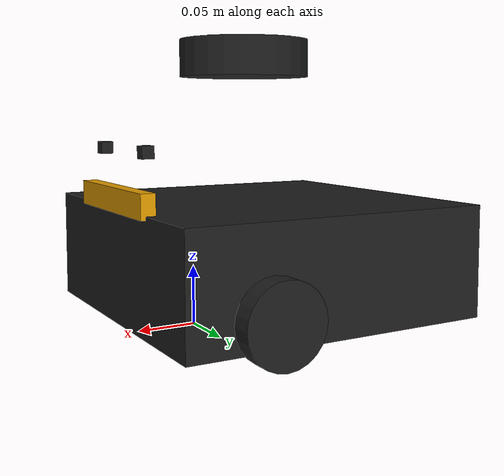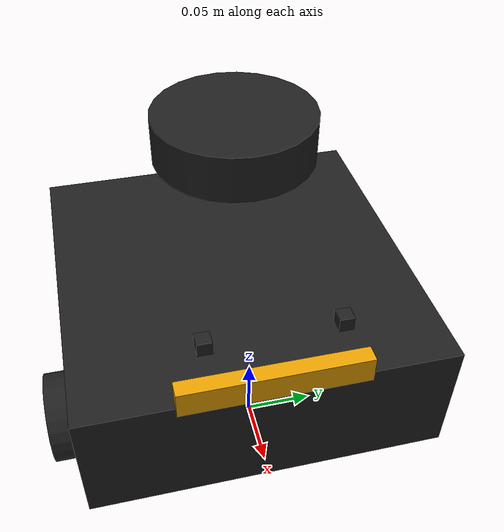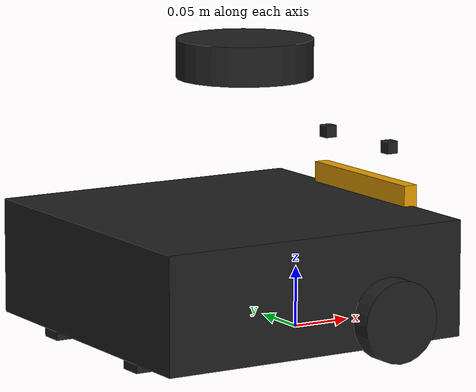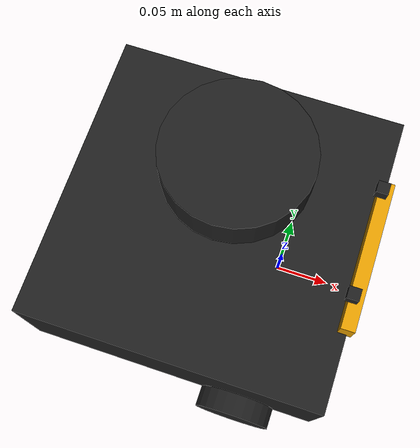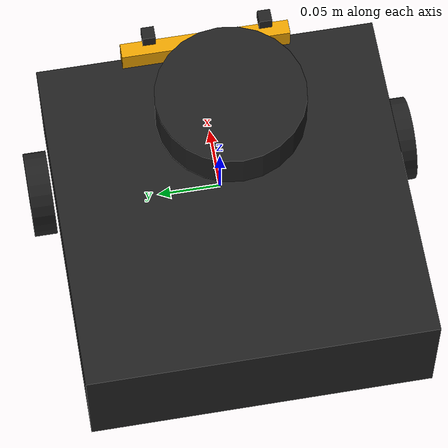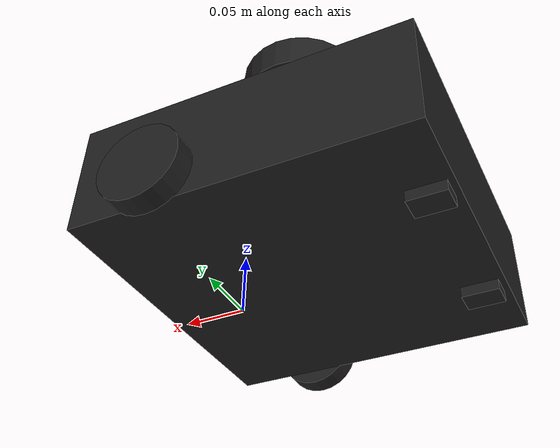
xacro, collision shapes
<?xml version="1.0" ?>
<robot name="turtlebot3_waffle" xmlns:xacro="http://ros.org/wiki/xacro">
  <xacro:include filename="$(find turtlebot3_description)/urdf/common_properties.xacro"/>
  <xacro:include filename="$(find building_map)/urdf/turtlebot3_waffle.gazebo.xacro"/>
  <xacro:include filename="$(find building_map)/urdf/sensors/stereo_camera.urdf.xacro"/>

  <xacro:property name="r200_cam_rgb_px" value="0.005"/>
  <xacro:property name="r200_cam_rgb_py" value="0.018"/>
  <xacro:property name="r200_cam_rgb_pz" value="0.013"/>
  <xacro:property name="r200_cam_depth_offset" value="0.01"/>
  <xacro:property name="M_PI" value="3.1415926535897931"/>

  <link name="base_footprint"/>

  <joint name="base_joint" type="fixed">
    <parent link="base_footprint"/>
    <child link="base_link" />
    <origin xyz="0 0 0.010" rpy="0 0 0"/>
  </joint>

  <link name="base_link">
    <visual>
      <origin xyz="-0.064 0 0.0" rpy="0 0 0"/>
      <geometry>
        <mesh filename="package://turtlebot3_description/meshes/bases/waffle_base.stl" scale="0.001 0.001 0.001"/>
      </geometry>
      <material name="light_black"/>
    </visual>

    <collision>
      <origin xyz="-0.064 0 0.047" rpy="0 0 0"/>
      <geometry>
        <box size="0.266 0.266 0.094"/>
      </geometry>
    </collision>

    <inertial>
      <origin xyz="0 0 0" rpy="0 0 0"/>
      <mass value="1.3729096e+00"/>
      <inertia ixx="8.7002718e-03" ixy="-4.7576583e-05" ixz="1.1160499e-04"
               iyy="8.6195418e-03" iyz="-3.5422299e-06"
               izz="1.4612727e-02" />
    </inertial>
  </link>

  <joint name="wheel_left_joint" type="continuous">
    <parent link="base_link"/>
    <child link="wheel_left_link"/>
    <origin xyz="0.0 0.144 0.023" rpy="-1.57 0 0"/>
    <axis xyz="0 0 1"/>
  </joint>

  <link name="wheel_left_link">
    <visual>
      <origin xyz="0 0 0" rpy="1.57 0 0"/>
      <geometry>
        <mesh filename="package://turtlebot3_description/meshes/wheels/left_tire.stl" scale="0.001 0.001 0.001"/>
      </geometry>
      <material name="dark"/>
    </visual>

    <collision>
      <origin xyz="0 0 0" rpy="0 0 0"/>
      <geometry>
        <cylinder length="0.018" radius="0.033"/>
      </geometry>
    </collision>

    <inertial>
      <origin xyz="0 0 0" />
      <mass value="2.8498940e-02" />
      <inertia ixx="1.1175580e-05" ixy="-4.2369783e-11" ixz="-5.9381719e-09"
               iyy="1.1192413e-05" iyz="-1.4400107e-11"
               izz="2.0712558e-05" />
      </inertial>
  </link>

  <joint name="wheel_right_joint" type="continuous">
    <parent link="base_link"/>
    <child link="wheel_right_link"/>
    <origin xyz="0.0 -0.144 0.023" rpy="-1.57 0 0"/>
    <axis xyz="0 0 1"/>
  </joint>

  <link name="wheel_right_link">
    <visual>
      <origin xyz="0 0 0" rpy="1.57 0 0"/>
      <geometry>
        <mesh filename="package://turtlebot3_description/meshes/wheels/right_tire.stl" scale="0.001 0.001 0.001"/>
      </geometry>
      <material name="dark"/>
    </visual>

    <collision>
      <origin xyz="0 0 0" rpy="0 0 0"/>
      <geometry>
        <cylinder length="0.018" radius="0.033"/>
      </geometry>
    </collision>

    <inertial>
      <origin xyz="0 0 0" />
      <mass value="2.8498940e-02" />
      <inertia ixx="1.1175580e-05" ixy="-4.2369783e-11" ixz="-5.9381719e-09"
               iyy="1.1192413e-05" iyz="-1.4400107e-11"
               izz="2.0712558e-05" />
      </inertial>
  </link>

  <joint name="caster_back_right_joint" type="fixed">
    <parent link="base_link"/>
    <child link="caster_back_right_link"/>
    <origin xyz="-0.177 -0.064 -0.004" rpy="-1.57 0 0"/>
  </joint>

  <link name="caster_back_right_link">
    <collision>
      <origin xyz="0 0.001 0" rpy="0 0 0"/>
      <geometry>
        <box size="0.030 0.009 0.020"/>
      </geometry>
    </collision>

    <inertial>
      <origin xyz="0 0 0" />
      <mass value="0.005" />
      <inertia ixx="0.001" ixy="0.0" ixz="0.0"
               iyy="0.001" iyz="0.0"
               izz="0.001" />
    </inertial>
  </link>

  <joint name="caster_back_left_joint" type="fixed">
    <parent link="base_link"/>
    <child link="caster_back_left_link"/>
    <origin xyz="-0.177 0.064 -0.004" rpy="-1.57 0 0"/>
  </joint>

  <link name="caster_back_left_link">
    <collision>
      <origin xyz="0 0.001 0" rpy="0 0 0"/>
      <geometry>
        <box size="0.030 0.009 0.020"/>
      </geometry>
    </collision>

    <inertial>
      <origin xyz="0 0 0" />
      <mass value="0.005" />
      <inertia ixx="0.001" ixy="0.0" ixz="0.0"
               iyy="0.001" iyz="0.0"
               izz="0.001" />
    </inertial>
  </link>

  <joint name="imu_joint" type="fixed">
    <parent link="base_link"/>
    <child link="imu_link"/>
    <origin xyz="0.0 0 0.068" rpy="0 0 0"/>
  </joint>

  <link name="imu_link"/>

  <joint name="scan_joint" type="fixed">
    <parent link="base_link"/>
    <child link="base_scan"/>
    <origin xyz="-0.064 0 0.222" rpy="0 0 0"/>
  </joint>

  <link name="base_scan">
    <visual>
      <origin xyz="0 0 0" rpy="0 0 0"/>
      <geometry>
        <mesh filename="package://turtlebot3_description/meshes/sensors/lds.stl" scale="0.001 0.001 0.001"/>
      </geometry>
      <material name="dark"/>
    </visual>

    <collision>
      <origin xyz="0.015 0 -0.0065" rpy="0 0 0"/>
      <geometry>
        <cylinder length="0.0315" radius="0.055"/>
      </geometry>
    </collision>

    <inertial>
      <mass value="0.114" />
      <origin xyz="0 0 0" />
      <inertia ixx="0.001" ixy="0.0" ixz="0.0"
               iyy="0.001" iyz="0.0"
               izz="0.001" />
    </inertial>
  </link>

  <joint name="camera_joint" type="fixed">
    <origin xyz="0.064 -0.065 0.094" rpy="0 0 0"/>
    <parent link="base_link"/>
    <child link="camera_link"/>
  </joint>

  <link name="camera_link">
    <visual>
     <origin xyz="0 0 0" rpy="1.57 0 1.57"/>
      <geometry>
       <mesh filename="package://turtlebot3_description/meshes/sensors/r200.dae" />
      </geometry>
    </visual>
    <collision>
      <origin xyz="0.003 0.065 0.007" rpy="0 0 0"/>
      <geometry>
        <box size="0.012 0.132 0.020"/>
      </geometry>
    </collision>

    <!-- This inertial field needs doesn't contain reliable data!! -->
  </link>

  <joint name="camera_rgb_joint" type="fixed">
    <origin xyz="${r200_cam_rgb_px} ${r200_cam_rgb_py} ${r200_cam_rgb_pz}" rpy="0 0 0"/>
    <parent link="camera_link"/>
    <child link="camera_rgb_frame"/>
  </joint>
  <link name="camera_rgb_frame"/>

  <joint name="camera_rgb_optical_joint" type="fixed">
    <origin xyz="0 0 0" rpy="-1.57 0 -1.57"/>
    <parent link="camera_rgb_frame"/>
    <child link="camera_rgb_optical_frame"/>
  </joint>
  <link name="camera_rgb_optical_frame"/>

  <joint name="camera_depth_joint" type="fixed">
    <origin xyz="${r200_cam_rgb_px} ${r200_cam_rgb_py + r200_cam_depth_offset} ${r200_cam_rgb_pz}" rpy="0 0 0"/>
    <parent link="camera_link"/>
    <child link="camera_depth_frame"/>
  </joint>
  <link name="camera_depth_frame"/>

  <joint name="camera_depth_optical_joint" type="fixed">
    <origin xyz="0 0 0" rpy="-1.57 0 -1.57"/>
    <parent link="camera_depth_frame"/>
    <child link="camera_depth_optical_frame"/>
  </joint>
  <link name="camera_depth_optical_frame"/>

  <xacro:stereo_camera_v0 name="wide_stereo" parent="base_link" focal_length="319.998825" hfov="90" image_format="BAYER_BGGR8" image_width="640" image_height="480">
    <origin xyz="0.06 0.045 0.14" rpy="0 0 0"/>
  </xacro:stereo_camera_v0>

</robot>

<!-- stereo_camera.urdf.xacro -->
<robot xmlns:xacro="http://www.ros.org/wiki/xacro">

  <!-- stereo camera macro uses wge100_camera macros -->
  <xacro:include filename="$(find building_map)/urdf/sensors/wge100_camera.urdf.xacro" />

  <xacro:include filename="$(find building_map)/urdf/sensors/stereo_camera.gazebo.xacro" />

  <xacro:property name="stereo_dx" value="0.00" />
  <xacro:property name="stereo_dy" value="-0.09" /> <!-- +y to the left -->
  <xacro:property name="stereo_dz" value="0.00" />
  <xacro:property name="stereo_rx" value="0.00" />
  <xacro:property name="stereo_ry" value="0.00" />
  <xacro:property name="stereo_rz" value="0.00" />

  <!-- this macro is used for creating wide and narrow double stereo camera links -->
  <xacro:macro name="stereo_camera_v0" params="name parent focal_length hfov image_format image_width image_height *origin">

    <joint name="${name}_frame_joint" type="fixed">
      <xacro:insert_block name="origin" />
      <parent link="${parent}"/>
      <child link="${name}_link"/>
    </joint>

    <!-- camera link is at center of the optical frame, but in x-forward notation -->
    <link name="${name}_link">
    </link>

    <!-- attach optical frame to the camera link -->
    <joint name="${name}_optical_frame_joint" type="fixed">
      <origin xyz="0 0 0" rpy="${-M_PI/2} 0.0 ${-M_PI/2}" /> <!-- rotate frame from x-forward to z-forward camera coords -->
      <parent link="${name}_link"/>
      <child link="${name}_optical_frame"/>
    </joint>

    <!-- optical frame for the stereo camera, with z-forward notation, this is the frame stereo camera images users should refer to -->
    <link name="${name}_optical_frame" type="camera"/>

    <!-- stereo left camera -->
    <xacro:wge100_camera_v0 name="${name}_l_stereo_camera" camera_name="${name}/left" image_format="${image_format}" image_topic_name="image_raw"
                            camera_info_topic_name="camera_info" parent="${name}_link"
                            hfov="${hfov}" focal_length="${focal_length}"
                            frame_id="${name}_optical_frame" hack_baseline="0"
                            image_width="${image_width}" image_height="${image_height}">
      <origin xyz="0 0 0" rpy="0 0 0" />
    </xacro:wge100_camera_v0>

    <!-- stereo right camera -->
    <xacro:wge100_camera_v0 name="${name}_r_stereo_camera" camera_name="${name}/right" image_format="${image_format}" image_topic_name="image_raw"
                            camera_info_topic_name="camera_info" parent="${name}_l_stereo_camera_frame"
                            hfov="${hfov}" focal_length="${focal_length}"
                            frame_id="${name}_optical_frame" hack_baseline="${-stereo_dy}"
                            image_width="${image_width}" image_height="${image_height}">
      <origin xyz="${stereo_dx} ${stereo_dy} ${stereo_dz}" rpy="${stereo_rx} ${stereo_ry} ${stereo_rz}" />
    </xacro:wge100_camera_v0>

    <!-- extensions -->
    <xacro:stereo_camera_gazebo_v0 name="${name}" focal_length="${focal_length}" hfov="${hfov}"
                                   image_width="${image_width}" image_height="${image_height}"/>

  </xacro:macro>
</robot>

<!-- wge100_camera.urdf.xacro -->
<!-- XML namespaces -->
<robot xmlns:xacro="http://www.ros.org/wiki/xacro">

  <xacro:include filename="$(find building_map)/urdf/sensors/wge100_camera.gazebo.xacro" />

  <xacro:macro name="wge100_camera_v0" params="name camera_name image_format image_topic_name camera_info_topic_name parent hfov focal_length frame_id hack_baseline image_width image_height *origin">

    <joint name="${name}_frame_joint" type="fixed">
      <xacro:insert_block name="origin" />
      <parent link="${parent}"/>
      <child link="${name}_frame"/>
    </joint>

    <link name="${name}_frame">
	  <visual>
       <geometry>
        <box size="0.01 0.01 0.01"/>
       </geometry>
      </visual>
      <collision>
       <geometry>
        <box size="0.01 0.01 0.01"/>
       </geometry>
      </collision>
    </link>

    <joint name="${name}_optical_frame_joint" type="fixed">
      <origin xyz="0 0 0" rpy="${-M_PI/2} 0.0 ${-M_PI/2}" />
      <parent link="${name}_frame" />
      <child link="${name}_optical_frame"/>
    </joint>

    <link name="${name}_optical_frame"/>

    <!-- extensions -->
    <xacro:wge100_camera_gazebo_v0 name="${name}" camera_name="${camera_name}" image_format="${image_format}" image_topic_name="${image_topic_name}"
                                   camera_info_topic_name="${camera_info_topic_name}"
                                   hfov="${hfov}" focal_length="${focal_length}"
                                   frame_id="${frame_id}" hack_baseline="${hack_baseline}"
                                   image_width="${image_width}" image_height="${image_height}"/>

  </xacro:macro>

</robot>
